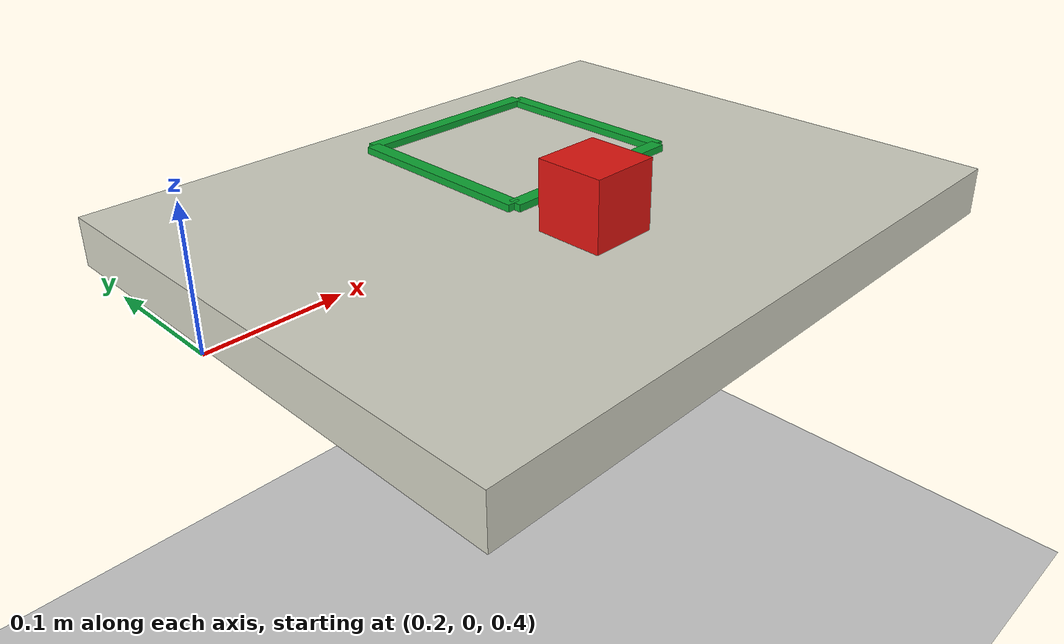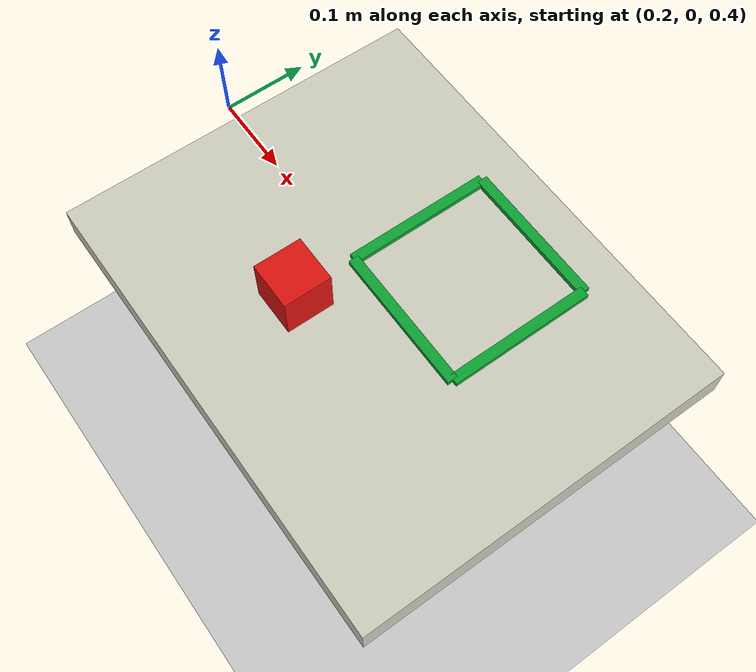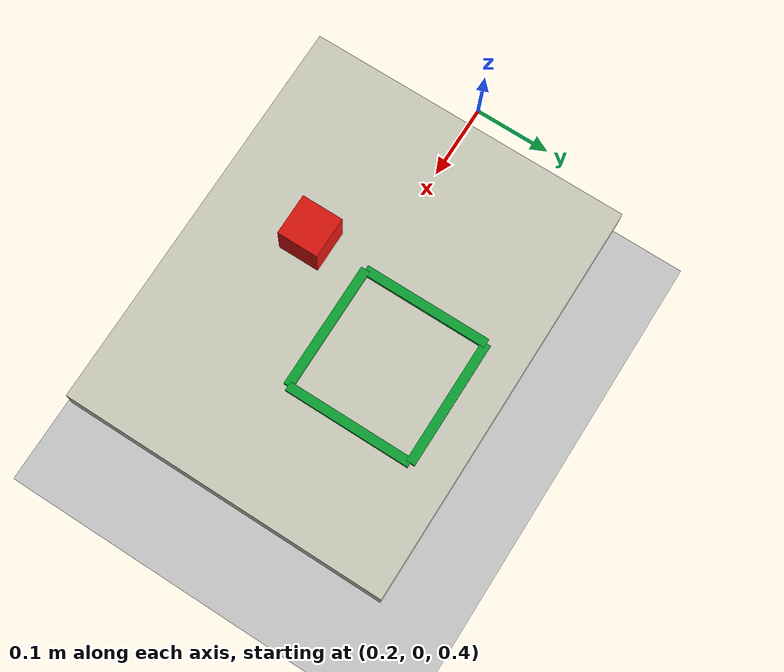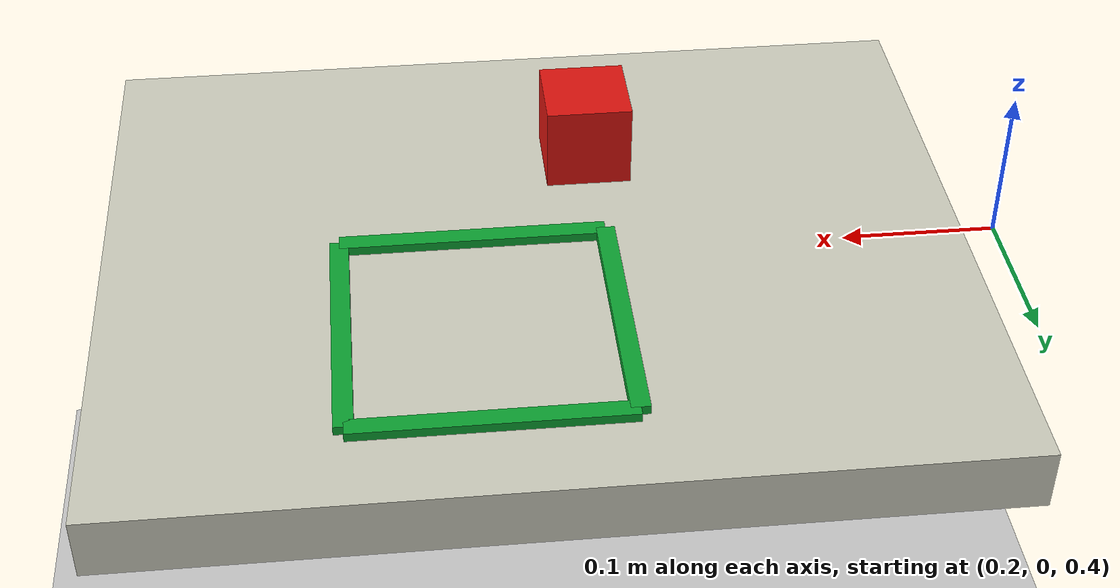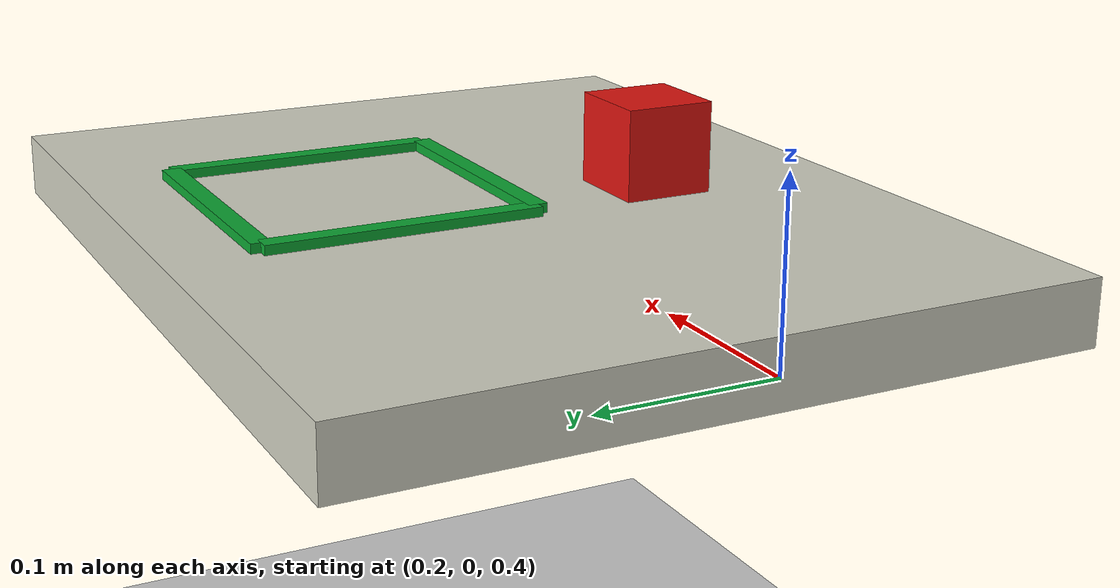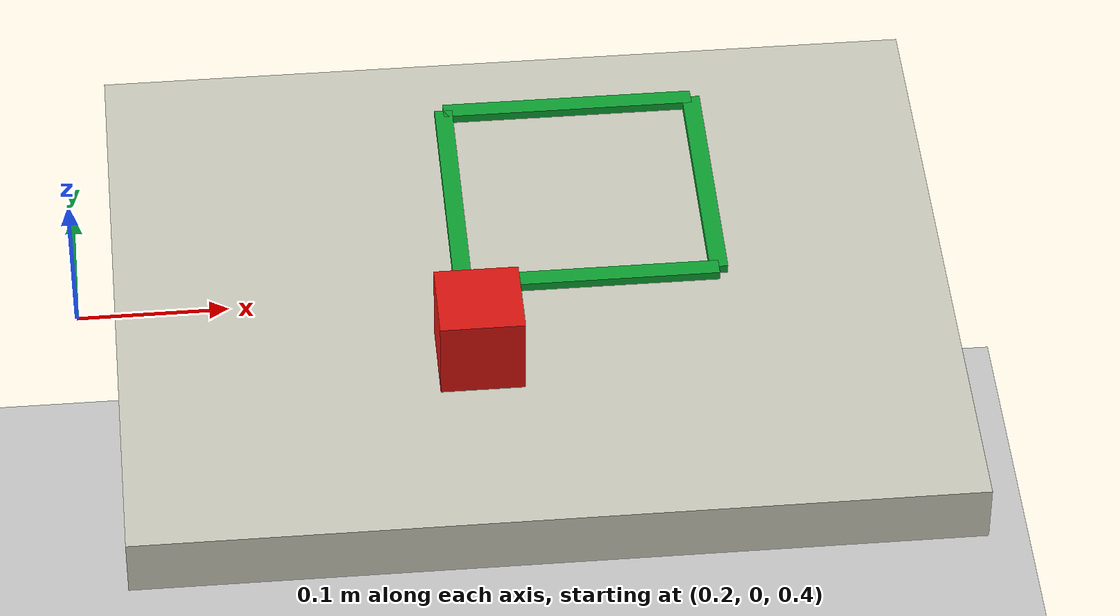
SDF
<?xml version="1.0" ?>
<sdf version="1.6">
  <world name="arm_planar_push">
    <physics name="default_physics" default="0" type="ode">
      <gravity>0 0 -9.8066</gravity>
      <ode>
        <solver>
          <iters>60</iters>
          <sor>1.3</sor>
        </solver>
        <constraints>
          <cfm>0</cfm>
          <erp>0.2</erp>
        </constraints>
      </ode>
      <max_step_size>0.005</max_step_size>
      <real_time_factor>1.0</real_time_factor>
    </physics>

    <scene>
      <ambient>0.58 0.58 0.58</ambient>
      <background>0.72 0.76 0.80</background>
    </scene>

    <include>
      <uri>model://ground plane</uri>
    </include>

    <include>
      <uri>model://sun</uri>
    </include>

    <model name="arm_push_table">
      <static>true</static>
      <pose>0.50 0.00 0.39 0 0 0</pose>
      <link name="table_link">
        <collision name="table_collision">
          <geometry>
            <box>
              <size>0.55 0.44 0.04</size>
            </box>
          </geometry>
          <surface>
            <friction>
              <ode>
                <mu>0.85</mu>
                <mu2>0.85</mu2>
              </ode>
            </friction>
          </surface>
        </collision>
        <visual name="table_visual">
          <geometry>
            <box>
              <size>0.55 0.44 0.04</size>
            </box>
          </geometry>
          <material>
            <ambient>0.82 0.82 0.76 1</ambient>
            <diffuse>0.82 0.82 0.76 1</diffuse>
          </material>
        </visual>
      </link>
    </model>

    <model name="target_square">
      <static>true</static>
      <pose>0.54 0.08 0.414 0 0 0</pose>
      <link name="target_link">
        <visual name="front_edge">
          <pose>0 0.085 0 0 0 0</pose>
          <geometry>
            <box>
              <size>0.17 0.012 0.006</size>
            </box>
          </geometry>
          <material>
            <ambient>0.05 0.65 0.20 1</ambient>
            <diffuse>0.05 0.65 0.20 1</diffuse>
          </material>
        </visual>
        <visual name="back_edge">
          <pose>0 -0.085 0 0 0 0</pose>
          <geometry>
            <box>
              <size>0.17 0.012 0.006</size>
            </box>
          </geometry>
          <material>
            <ambient>0.05 0.65 0.20 1</ambient>
            <diffuse>0.05 0.65 0.20 1</diffuse>
          </material>
        </visual>
        <visual name="left_edge">
          <pose>-0.085 0 0 0 0 0</pose>
          <geometry>
            <box>
              <size>0.012 0.17 0.006</size>
            </box>
          </geometry>
          <material>
            <ambient>0.05 0.65 0.20 1</ambient>
            <diffuse>0.05 0.65 0.20 1</diffuse>
          </material>
        </visual>
        <visual name="right_edge">
          <pose>0.085 0 0 0 0 0</pose>
          <geometry>
            <box>
              <size>0.012 0.17 0.006</size>
            </box>
          </geometry>
          <material>
            <ambient>0.05 0.65 0.20 1</ambient>
            <diffuse>0.05 0.65 0.20 1</diffuse>
          </material>
        </visual>
      </link>
    </model>

    <model name="red_block">
      <static>false</static>
      <pose>0.46 -0.08 0.445 0 0 0</pose>
      <link name="block_link">
        <inertial>
          <mass>0.14</mass>
          <inertia>
            <ixx>0.00008</ixx>
            <iyy>0.00008</iyy>
            <izz>0.00008</izz>
            <ixy>0</ixy>
            <ixz>0</ixz>
            <iyz>0</iyz>
          </inertia>
        </inertial>
        <collision name="block_collision">
          <geometry>
            <box>
              <size>0.055 0.055 0.055</size>
            </box>
          </geometry>
          <surface>
            <friction>
              <ode>
                <mu>0.40</mu>
                <mu2>0.40</mu2>
              </ode>
            </friction>
          </surface>
        </collision>
        <visual name="block_visual">
          <geometry>
            <box>
              <size>0.055 0.055 0.055</size>
            </box>
          </geometry>
          <material>
            <ambient>0.88 0.08 0.06 1</ambient>
            <diffuse>0.88 0.08 0.06 1</diffuse>
          </material>
        </visual>
      </link>
    </model>
  </world>
</sdf>
